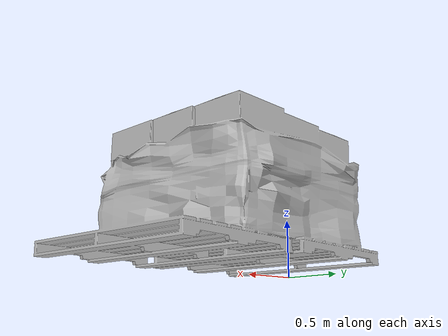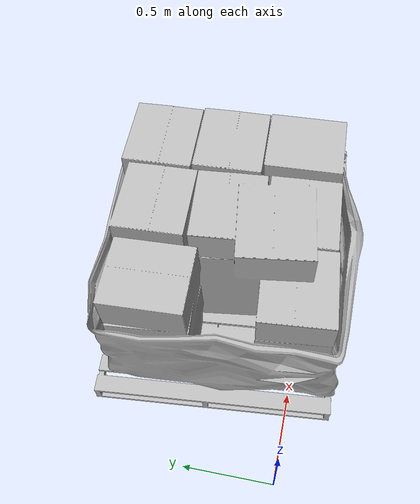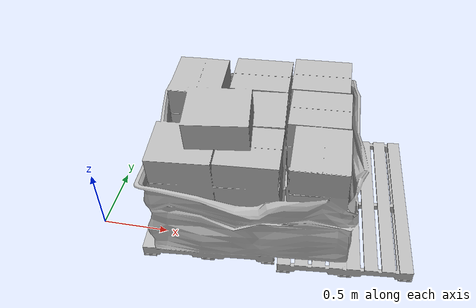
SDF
<?xml version='1.0'?>
<sdf version='1.6'>
  <model name='box_pallets_2'>
    <static>true</static>
    <link name="link">
      <pose>0 0 0 0 0 0</pose>
      <visual name="visual">
            <geometry>
                <mesh>
                  <scale>0.01 0.01 0.01</scale>
                  <uri>model://box_pallets_2/meshes/box_pallet.dae</uri>
                </mesh>
            </geometry>
        </visual>

    </link>
  </model>
</sdf>
